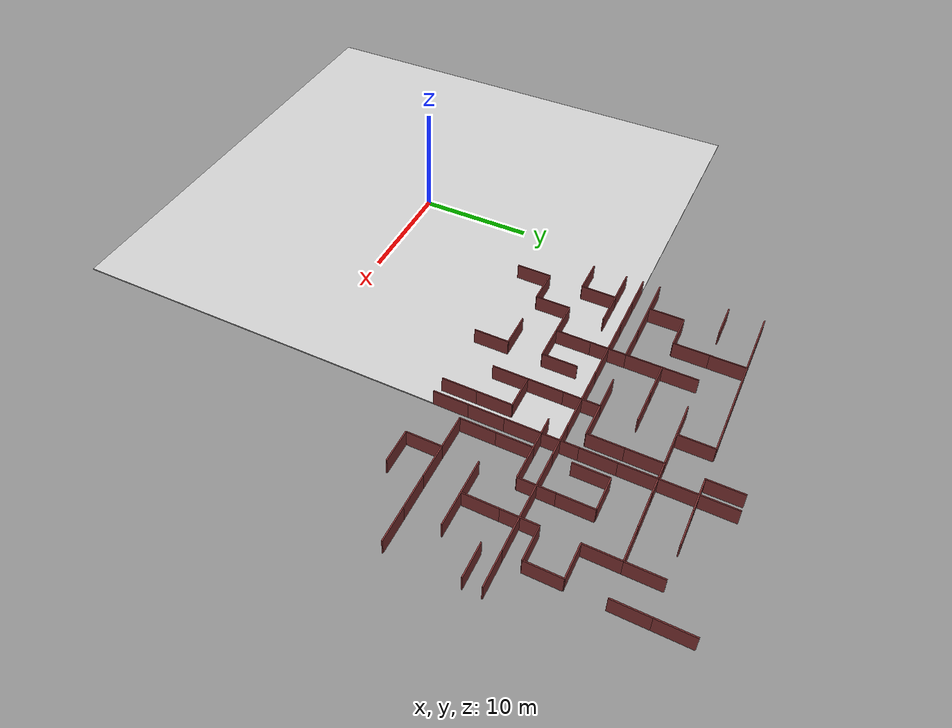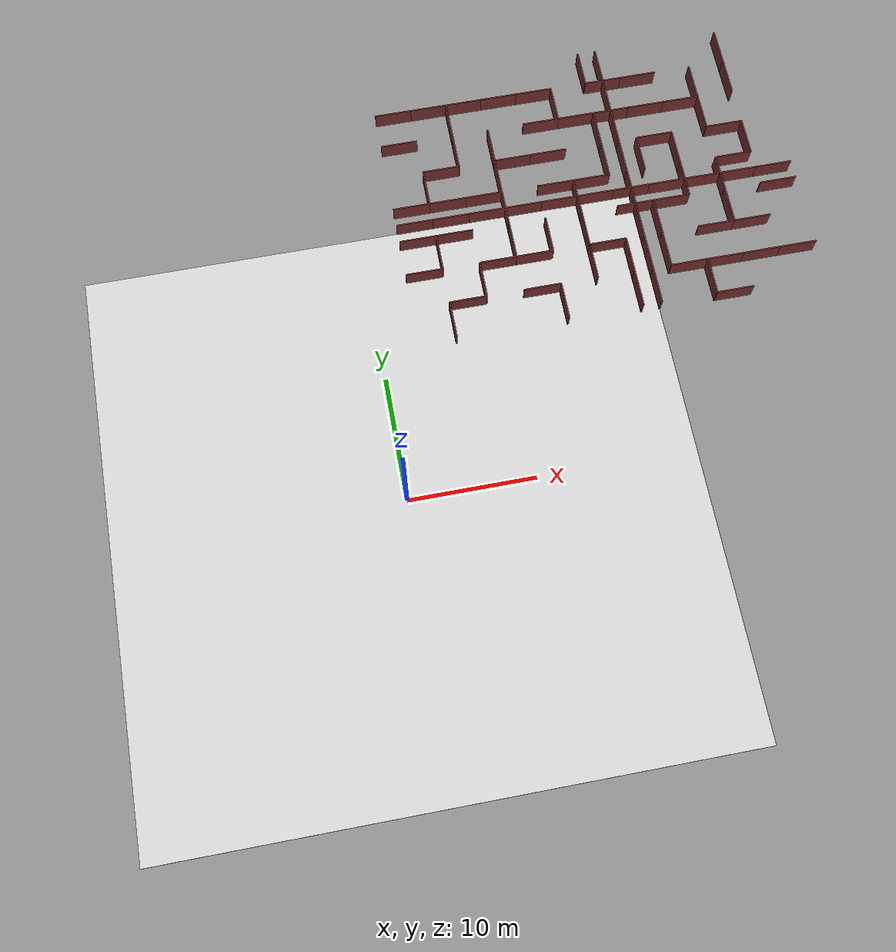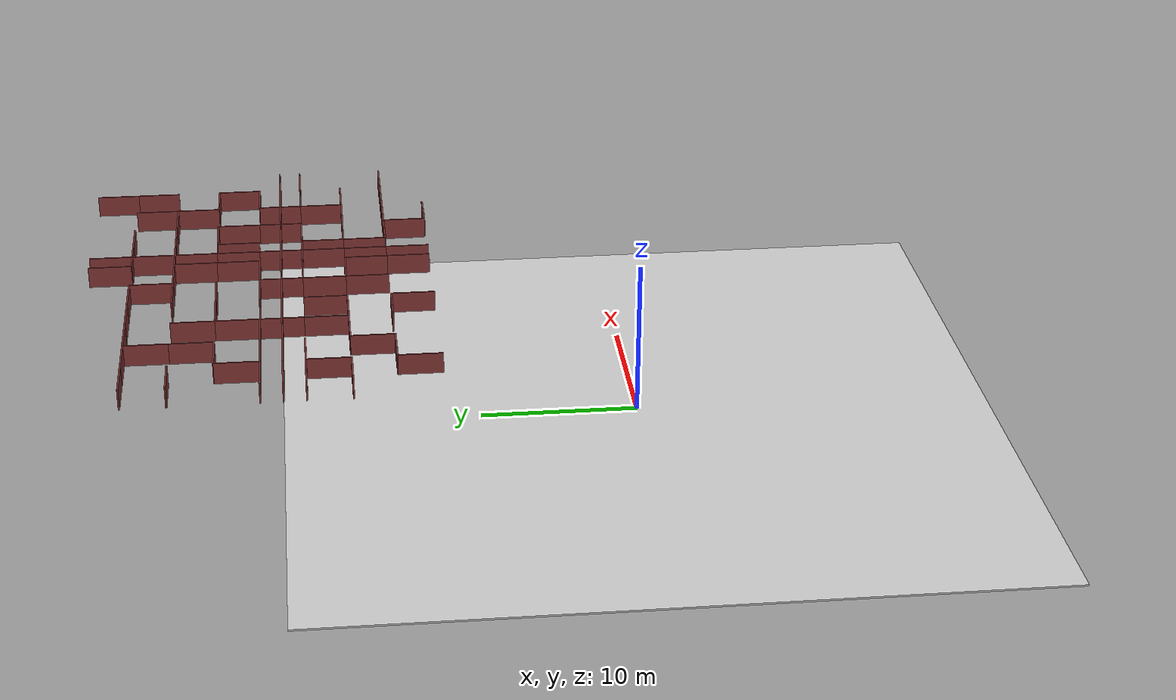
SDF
<sdf version="1.7">
 <world name="maze_world">
  <model name="ground">
   <static>true</static>
   <link name="ground_link">
    <collision name="collision"><geometry><box><size>45 45 0.1</size></box></geometry></collision>
    <visual name="visual">
     <geometry><box><size>45 45 0.1</size></box></geometry>
     <material><diffuse>0.8 0.8 0.8 1</diffuse></material>
    </visual>
   </link>
  </model>
  <model name="wall_w_117">
   <static>true</static>
   <pose>6.0 13.5 0.75 0 0 1.5708</pose>
   <link name="link">
    <collision name="collision"><geometry><box><size>3 0.1 1.5</size></box></geometry></collision>
    <visual name="visual">
     <geometry><box><size>3 0.1 1.5</size></box></geometry>
     <material><diffuse>0.5 0.2 0.2 1</diffuse></material>
    </visual>
   </link>
  </model>
  <model name="wall_w_120">
   <static>true</static>
   <pose>15.0 13.5 0.75 0 0 1.5708</pose>
   <link name="link">
    <collision name="collision"><geometry><box><size>3 0.1 1.5</size></box></geometry></collision>
    <visual name="visual">
     <geometry><box><size>3 0.1 1.5</size></box></geometry>
     <material><diffuse>0.5 0.2 0.2 1</diffuse></material>
    </visual>
   </link>
  </model>
  <model name="wall_w_122">
   <static>true</static>
   <pose>21.0 13.5 0.75 0 0 1.5708</pose>
   <link name="link">
    <collision name="collision"><geometry><box><size>3 0.1 1.5</size></box></geometry></collision>
    <visual name="visual">
     <geometry><box><size>3 0.1 1.5</size></box></geometry>
     <material><diffuse>0.5 0.2 0.2 1</diffuse></material>
    </visual>
   </link>
  </model>
  <model name="wall_n_123">
   <static>true</static>
   <pose>28.5 12.0 0.75 0 0 0</pose>
   <link name="link">
    <collision name="collision"><geometry><box><size>3 0.1 1.5</size></box></geometry></collision>
    <visual name="visual">
     <geometry><box><size>3 0.1 1.5</size></box></geometry>
     <material><diffuse>0.5 0.2 0.2 1</diffuse></material>
    </visual>
   </link>
  </model>
  <model name="wall_w_124">
   <static>true</static>
   <pose>27.0 13.5 0.75 0 0 1.5708</pose>
   <link name="link">
    <collision name="collision"><geometry><box><size>3 0.1 1.5</size></box></geometry></collision>
    <visual name="visual">
     <geometry><box><size>3 0.1 1.5</size></box></geometry>
     <material><diffuse>0.5 0.2 0.2 1</diffuse></material>
    </visual>
   </link>
  </model>
  <model name="wall_n_131">
   <static>true</static>
   <pose>7.5 15.0 0.75 0 0 0</pose>
   <link name="link">
    <collision name="collision"><geometry><box><size>3 0.1 1.5</size></box></geometry></collision>
    <visual name="visual">
     <geometry><box><size>3 0.1 1.5</size></box></geometry>
     <material><diffuse>0.5 0.2 0.2 1</diffuse></material>
    </visual>
   </link>
  </model>
  <model name="wall_w_132">
   <static>true</static>
   <pose>9.0 16.5 0.75 0 0 1.5708</pose>
   <link name="link">
    <collision name="collision"><geometry><box><size>3 0.1 1.5</size></box></geometry></collision>
    <visual name="visual">
     <geometry><box><size>3 0.1 1.5</size></box></geometry>
     <material><diffuse>0.5 0.2 0.2 1</diffuse></material>
    </visual>
   </link>
  </model>
  <model name="wall_n_133">
   <static>true</static>
   <pose>13.5 15.0 0.75 0 0 0</pose>
   <link name="link">
    <collision name="collision"><geometry><box><size>3 0.1 1.5</size></box></geometry></collision>
    <visual name="visual">
     <geometry><box><size>3 0.1 1.5</size></box></geometry>
     <material><diffuse>0.5 0.2 0.2 1</diffuse></material>
    </visual>
   </link>
  </model>
  <model name="wall_w_134">
   <static>true</static>
   <pose>18.0 16.5 0.75 0 0 1.5708</pose>
   <link name="link">
    <collision name="collision"><geometry><box><size>3 0.1 1.5</size></box></geometry></collision>
    <visual name="visual">
     <geometry><box><size>3 0.1 1.5</size></box></geometry>
     <material><diffuse>0.5 0.2 0.2 1</diffuse></material>
    </visual>
   </link>
  </model>
  <model name="wall_w_135">
   <static>true</static>
   <pose>21.0 16.5 0.75 0 0 1.5708</pose>
   <link name="link">
    <collision name="collision"><geometry><box><size>3 0.1 1.5</size></box></geometry></collision>
    <visual name="visual">
     <geometry><box><size>3 0.1 1.5</size></box></geometry>
     <material><diffuse>0.5 0.2 0.2 1</diffuse></material>
    </visual>
   </link>
  </model>
  <model name="wall_n_136">
   <static>true</static>
   <pose>25.5 15.0 0.75 0 0 0</pose>
   <link name="link">
    <collision name="collision"><geometry><box><size>3 0.1 1.5</size></box></geometry></collision>
    <visual name="visual">
     <geometry><box><size>3 0.1 1.5</size></box></geometry>
     <material><diffuse>0.5 0.2 0.2 1</diffuse></material>
    </visual>
   </link>
  </model>
  <model name="wall_w_137">
   <static>true</static>
   <pose>24.0 16.5 0.75 0 0 1.5708</pose>
   <link name="link">
    <collision name="collision"><geometry><box><size>3 0.1 1.5</size></box></geometry></collision>
    <visual name="visual">
     <geometry><box><size>3 0.1 1.5</size></box></geometry>
     <material><diffuse>0.5 0.2 0.2 1</diffuse></material>
    </visual>
   </link>
  </model>
  <model name="wall_n_138">
   <static>true</static>
   <pose>28.5 15.0 0.75 0 0 0</pose>
   <link name="link">
    <collision name="collision"><geometry><box><size>3 0.1 1.5</size></box></geometry></collision>
    <visual name="visual">
     <geometry><box><size>3 0.1 1.5</size></box></geometry>
     <material><diffuse>0.5 0.2 0.2 1</diffuse></material>
    </visual>
   </link>
  </model>
  <model name="wall_n_139">
   <static>true</static>
   <pose>31.5 15.0 0.75 0 0 0</pose>
   <link name="link">
    <collision name="collision"><geometry><box><size>3 0.1 1.5</size></box></geometry></collision>
    <visual name="visual">
     <geometry><box><size>3 0.1 1.5</size></box></geometry>
     <material><diffuse>0.5 0.2 0.2 1</diffuse></material>
    </visual>
   </link>
  </model>
  <model name="wall_n_140">
   <static>true</static>
   <pose>34.5 15.0 0.75 0 0 0</pose>
   <link name="link">
    <collision name="collision"><geometry><box><size>3 0.1 1.5</size></box></geometry></collision>
    <visual name="visual">
     <geometry><box><size>3 0.1 1.5</size></box></geometry>
     <material><diffuse>0.5 0.2 0.2 1</diffuse></material>
    </visual>
   </link>
  </model>
  <model name="wall_n_144">
   <static>true</static>
   <pose>4.5 18.0 0.75 0 0 0</pose>
   <link name="link">
    <collision name="collision"><geometry><box><size>3 0.1 1.5</size></box></geometry></collision>
    <visual name="visual">
     <geometry><box><size>3 0.1 1.5</size></box></geometry>
     <material><diffuse>0.5 0.2 0.2 1</diffuse></material>
    </visual>
   </link>
  </model>
  <model name="wall_w_145">
   <static>true</static>
   <pose>6.0 19.5 0.75 0 0 1.5708</pose>
   <link name="link">
    <collision name="collision"><geometry><box><size>3 0.1 1.5</size></box></geometry></collision>
    <visual name="visual">
     <geometry><box><size>3 0.1 1.5</size></box></geometry>
     <material><diffuse>0.5 0.2 0.2 1</diffuse></material>
    </visual>
   </link>
  </model>
  <model name="wall_n_146">
   <static>true</static>
   <pose>10.5 18.0 0.75 0 0 0</pose>
   <link name="link">
    <collision name="collision"><geometry><box><size>3 0.1 1.5</size></box></geometry></collision>
    <visual name="visual">
     <geometry><box><size>3 0.1 1.5</size></box></geometry>
     <material><diffuse>0.5 0.2 0.2 1</diffuse></material>
    </visual>
   </link>
  </model>
  <model name="wall_n_147">
   <static>true</static>
   <pose>13.5 18.0 0.75 0 0 0</pose>
   <link name="link">
    <collision name="collision"><geometry><box><size>3 0.1 1.5</size></box></geometry></collision>
    <visual name="visual">
     <geometry><box><size>3 0.1 1.5</size></box></geometry>
     <material><diffuse>0.5 0.2 0.2 1</diffuse></material>
    </visual>
   </link>
  </model>
  <model name="wall_w_148">
   <static>true</static>
   <pose>12.0 19.5 0.75 0 0 1.5708</pose>
   <link name="link">
    <collision name="collision"><geometry><box><size>3 0.1 1.5</size></box></geometry></collision>
    <visual name="visual">
     <geometry><box><size>3 0.1 1.5</size></box></geometry>
     <material><diffuse>0.5 0.2 0.2 1</diffuse></material>
    </visual>
   </link>
  </model>
  <model name="wall_w_149">
   <static>true</static>
   <pose>15.0 19.5 0.75 0 0 1.5708</pose>
   <link name="link">
    <collision name="collision"><geometry><box><size>3 0.1 1.5</size></box></geometry></collision>
    <visual name="visual">
     <geometry><box><size>3 0.1 1.5</size></box></geometry>
     <material><diffuse>0.5 0.2 0.2 1</diffuse></material>
    </visual>
   </link>
  </model>
  <model name="wall_n_150">
   <static>true</static>
   <pose>19.5 18.0 0.75 0 0 0</pose>
   <link name="link">
    <collision name="collision"><geometry><box><size>3 0.1 1.5</size></box></geometry></collision>
    <visual name="visual">
     <geometry><box><size>3 0.1 1.5</size></box></geometry>
     <material><diffuse>0.5 0.2 0.2 1</diffuse></material>
    </visual>
   </link>
  </model>
  <model name="wall_w_151">
   <static>true</static>
   <pose>18.0 19.5 0.75 0 0 1.5708</pose>
   <link name="link">
    <collision name="collision"><geometry><box><size>3 0.1 1.5</size></box></geometry></collision>
    <visual name="visual">
     <geometry><box><size>3 0.1 1.5</size></box></geometry>
     <material><diffuse>0.5 0.2 0.2 1</diffuse></material>
    </visual>
   </link>
  </model>
  <model name="wall_w_152">
   <static>true</static>
   <pose>24.0 19.5 0.75 0 0 1.5708</pose>
   <link name="link">
    <collision name="collision"><geometry><box><size>3 0.1 1.5</size></box></geometry></collision>
    <visual name="visual">
     <geometry><box><size>3 0.1 1.5</size></box></geometry>
     <material><diffuse>0.5 0.2 0.2 1</diffuse></material>
    </visual>
   </link>
  </model>
  <model name="wall_n_153">
   <static>true</static>
   <pose>28.5 18.0 0.75 0 0 0</pose>
   <link name="link">
    <collision name="collision"><geometry><box><size>3 0.1 1.5</size></box></geometry></collision>
    <visual name="visual">
     <geometry><box><size>3 0.1 1.5</size></box></geometry>
     <material><diffuse>0.5 0.2 0.2 1</diffuse></material>
    </visual>
   </link>
  </model>
  <model name="wall_n_154">
   <static>true</static>
   <pose>31.5 18.0 0.75 0 0 0</pose>
   <link name="link">
    <collision name="collision"><geometry><box><size>3 0.1 1.5</size></box></geometry></collision>
    <visual name="visual">
     <geometry><box><size>3 0.1 1.5</size></box></geometry>
     <material><diffuse>0.5 0.2 0.2 1</diffuse></material>
    </visual>
   </link>
  </model>
  <model name="wall_w_155">
   <static>true</static>
   <pose>30.0 19.5 0.75 0 0 1.5708</pose>
   <link name="link">
    <collision name="collision"><geometry><box><size>3 0.1 1.5</size></box></geometry></collision>
    <visual name="visual">
     <geometry><box><size>3 0.1 1.5</size></box></geometry>
     <material><diffuse>0.5 0.2 0.2 1</diffuse></material>
    </visual>
   </link>
  </model>
  <model name="wall_n_160">
   <static>true</static>
   <pose>4.5 21.0 0.75 0 0 0</pose>
   <link name="link">
    <collision name="collision"><geometry><box><size>3 0.1 1.5</size></box></geometry></collision>
    <visual name="visual">
     <geometry><box><size>3 0.1 1.5</size></box></geometry>
     <material><diffuse>0.5 0.2 0.2 1</diffuse></material>
    </visual>
   </link>
  </model>
  <model name="wall_n_161">
   <static>true</static>
   <pose>7.5 21.0 0.75 0 0 0</pose>
   <link name="link">
    <collision name="collision"><geometry><box><size>3 0.1 1.5</size></box></geometry></collision>
    <visual name="visual">
     <geometry><box><size>3 0.1 1.5</size></box></geometry>
     <material><diffuse>0.5 0.2 0.2 1</diffuse></material>
    </visual>
   </link>
  </model>
  <model name="wall_w_162">
   <static>true</static>
   <pose>12.0 22.5 0.75 0 0 1.5708</pose>
   <link name="link">
    <collision name="collision"><geometry><box><size>3 0.1 1.5</size></box></geometry></collision>
    <visual name="visual">
     <geometry><box><size>3 0.1 1.5</size></box></geometry>
     <material><diffuse>0.5 0.2 0.2 1</diffuse></material>
    </visual>
   </link>
  </model>
  <model name="wall_w_163">
   <static>true</static>
   <pose>18.0 22.5 0.75 0 0 1.5708</pose>
   <link name="link">
    <collision name="collision"><geometry><box><size>3 0.1 1.5</size></box></geometry></collision>
    <visual name="visual">
     <geometry><box><size>3 0.1 1.5</size></box></geometry>
     <material><diffuse>0.5 0.2 0.2 1</diffuse></material>
    </visual>
   </link>
  </model>
  <model name="wall_n_164">
   <static>true</static>
   <pose>22.5 21.0 0.75 0 0 0</pose>
   <link name="link">
    <collision name="collision"><geometry><box><size>3 0.1 1.5</size></box></geometry></collision>
    <visual name="visual">
     <geometry><box><size>3 0.1 1.5</size></box></geometry>
     <material><diffuse>0.5 0.2 0.2 1</diffuse></material>
    </visual>
   </link>
  </model>
  <model name="wall_n_165">
   <static>true</static>
   <pose>25.5 21.0 0.75 0 0 0</pose>
   <link name="link">
    <collision name="collision"><geometry><box><size>3 0.1 1.5</size></box></geometry></collision>
    <visual name="visual">
     <geometry><box><size>3 0.1 1.5</size></box></geometry>
     <material><diffuse>0.5 0.2 0.2 1</diffuse></material>
    </visual>
   </link>
  </model>
  <model name="wall_w_166">
   <static>true</static>
   <pose>27.0 22.5 0.75 0 0 1.5708</pose>
   <link name="link">
    <collision name="collision"><geometry><box><size>3 0.1 1.5</size></box></geometry></collision>
    <visual name="visual">
     <geometry><box><size>3 0.1 1.5</size></box></geometry>
     <material><diffuse>0.5 0.2 0.2 1</diffuse></material>
    </visual>
   </link>
  </model>
  <model name="wall_w_167">
   <static>true</static>
   <pose>30.0 22.5 0.75 0 0 1.5708</pose>
   <link name="link">
    <collision name="collision"><geometry><box><size>3 0.1 1.5</size></box></geometry></collision>
    <visual name="visual">
     <geometry><box><size>3 0.1 1.5</size></box></geometry>
     <material><diffuse>0.5 0.2 0.2 1</diffuse></material>
    </visual>
   </link>
  </model>
  <model name="wall_n_168">
   <static>true</static>
   <pose>34.5 21.0 0.75 0 0 0</pose>
   <link name="link">
    <collision name="collision"><geometry><box><size>3 0.1 1.5</size></box></geometry></collision>
    <visual name="visual">
     <geometry><box><size>3 0.1 1.5</size></box></geometry>
     <material><diffuse>0.5 0.2 0.2 1</diffuse></material>
    </visual>
   </link>
  </model>
  <model name="wall_n_175">
   <static>true</static>
   <pose>4.5 24.0 0.75 0 0 0</pose>
   <link name="link">
    <collision name="collision"><geometry><box><size>3 0.1 1.5</size></box></geometry></collision>
    <visual name="visual">
     <geometry><box><size>3 0.1 1.5</size></box></geometry>
     <material><diffuse>0.5 0.2 0.2 1</diffuse></material>
    </visual>
   </link>
  </model>
  <model name="wall_n_176">
   <static>true</static>
   <pose>7.5 24.0 0.75 0 0 0</pose>
   <link name="link">
    <collision name="collision"><geometry><box><size>3 0.1 1.5</size></box></geometry></collision>
    <visual name="visual">
     <geometry><box><size>3 0.1 1.5</size></box></geometry>
     <material><diffuse>0.5 0.2 0.2 1</diffuse></material>
    </visual>
   </link>
  </model>
  <model name="wall_w_177">
   <static>true</static>
   <pose>6.0 25.5 0.75 0 0 1.5708</pose>
   <link name="link">
    <collision name="collision"><geometry><box><size>3 0.1 1.5</size></box></geometry></collision>
    <visual name="visual">
     <geometry><box><size>3 0.1 1.5</size></box></geometry>
     <material><diffuse>0.5 0.2 0.2 1</diffuse></material>
    </visual>
   </link>
  </model>
  <model name="wall_n_178">
   <static>true</static>
   <pose>10.5 24.0 0.75 0 0 0</pose>
   <link name="link">
    <collision name="collision"><geometry><box><size>3 0.1 1.5</size></box></geometry></collision>
    <visual name="visual">
     <geometry><box><size>3 0.1 1.5</size></box></geometry>
     <material><diffuse>0.5 0.2 0.2 1</diffuse></material>
    </visual>
   </link>
  </model>
  <model name="wall_w_179">
   <static>true</static>
   <pose>12.0 25.5 0.75 0 0 1.5708</pose>
   <link name="link">
    <collision name="collision"><geometry><box><size>3 0.1 1.5</size></box></geometry></collision>
    <visual name="visual">
     <geometry><box><size>3 0.1 1.5</size></box></geometry>
     <material><diffuse>0.5 0.2 0.2 1</diffuse></material>
    </visual>
   </link>
  </model>
  <model name="wall_n_180">
   <static>true</static>
   <pose>16.5 24.0 0.75 0 0 0</pose>
   <link name="link">
    <collision name="collision"><geometry><box><size>3 0.1 1.5</size></box></geometry></collision>
    <visual name="visual">
     <geometry><box><size>3 0.1 1.5</size></box></geometry>
     <material><diffuse>0.5 0.2 0.2 1</diffuse></material>
    </visual>
   </link>
  </model>
  <model name="wall_n_181">
   <static>true</static>
   <pose>19.5 24.0 0.75 0 0 0</pose>
   <link name="link">
    <collision name="collision"><geometry><box><size>3 0.1 1.5</size></box></geometry></collision>
    <visual name="visual">
     <geometry><box><size>3 0.1 1.5</size></box></geometry>
     <material><diffuse>0.5 0.2 0.2 1</diffuse></material>
    </visual>
   </link>
  </model>
  <model name="wall_w_182">
   <static>true</static>
   <pose>21.0 25.5 0.75 0 0 1.5708</pose>
   <link name="link">
    <collision name="collision"><geometry><box><size>3 0.1 1.5</size></box></geometry></collision>
    <visual name="visual">
     <geometry><box><size>3 0.1 1.5</size></box></geometry>
     <material><diffuse>0.5 0.2 0.2 1</diffuse></material>
    </visual>
   </link>
  </model>
  <model name="wall_w_183">
   <static>true</static>
   <pose>24.0 25.5 0.75 0 0 1.5708</pose>
   <link name="link">
    <collision name="collision"><geometry><box><size>3 0.1 1.5</size></box></geometry></collision>
    <visual name="visual">
     <geometry><box><size>3 0.1 1.5</size></box></geometry>
     <material><diffuse>0.5 0.2 0.2 1</diffuse></material>
    </visual>
   </link>
  </model>
  <model name="wall_w_184">
   <static>true</static>
   <pose>27.0 25.5 0.75 0 0 1.5708</pose>
   <link name="link">
    <collision name="collision"><geometry><box><size>3 0.1 1.5</size></box></geometry></collision>
    <visual name="visual">
     <geometry><box><size>3 0.1 1.5</size></box></geometry>
     <material><diffuse>0.5 0.2 0.2 1</diffuse></material>
    </visual>
   </link>
  </model>
  <model name="wall_n_185">
   <static>true</static>
   <pose>31.5 24.0 0.75 0 0 0</pose>
   <link name="link">
    <collision name="collision"><geometry><box><size>3 0.1 1.5</size></box></geometry></collision>
    <visual name="visual">
     <geometry><box><size>3 0.1 1.5</size></box></geometry>
     <material><diffuse>0.5 0.2 0.2 1</diffuse></material>
    </visual>
   </link>
  </model>
  <model name="wall_w_186">
   <static>true</static>
   <pose>33.0 25.5 0.75 0 0 1.5708</pose>
   <link name="link">
    <collision name="collision"><geometry><box><size>3 0.1 1.5</size></box></geometry></collision>
    <visual name="visual">
     <geometry><box><size>3 0.1 1.5</size></box></geometry>
     <material><diffuse>0.5 0.2 0.2 1</diffuse></material>
    </visual>
   </link>
  </model>
  <model name="wall_n_190">
   <static>true</static>
   <pose>7.5 27.0 0.75 0 0 0</pose>
   <link name="link">
    <collision name="collision"><geometry><box><size>3 0.1 1.5</size></box></geometry></collision>
    <visual name="visual">
     <geometry><box><size>3 0.1 1.5</size></box></geometry>
     <material><diffuse>0.5 0.2 0.2 1</diffuse></material>
    </visual>
   </link>
  </model>
  <model name="wall_w_191">
   <static>true</static>
   <pose>9.0 28.5 0.75 0 0 1.5708</pose>
   <link name="link">
    <collision name="collision"><geometry><box><size>3 0.1 1.5</size></box></geometry></collision>
    <visual name="visual">
     <geometry><box><size>3 0.1 1.5</size></box></geometry>
     <material><diffuse>0.5 0.2 0.2 1</diffuse></material>
    </visual>
   </link>
  </model>
  <model name="wall_n_192">
   <static>true</static>
   <pose>13.5 27.0 0.75 0 0 0</pose>
   <link name="link">
    <collision name="collision"><geometry><box><size>3 0.1 1.5</size></box></geometry></collision>
    <visual name="visual">
     <geometry><box><size>3 0.1 1.5</size></box></geometry>
     <material><diffuse>0.5 0.2 0.2 1</diffuse></material>
    </visual>
   </link>
  </model>
  <model name="wall_w_193">
   <static>true</static>
   <pose>12.0 28.5 0.75 0 0 1.5708</pose>
   <link name="link">
    <collision name="collision"><geometry><box><size>3 0.1 1.5</size></box></geometry></collision>
    <visual name="visual">
     <geometry><box><size>3 0.1 1.5</size></box></geometry>
     <material><diffuse>0.5 0.2 0.2 1</diffuse></material>
    </visual>
   </link>
  </model>
  <model name="wall_n_194">
   <static>true</static>
   <pose>16.5 27.0 0.75 0 0 0</pose>
   <link name="link">
    <collision name="collision"><geometry><box><size>3 0.1 1.5</size></box></geometry></collision>
    <visual name="visual">
     <geometry><box><size>3 0.1 1.5</size></box></geometry>
     <material><diffuse>0.5 0.2 0.2 1</diffuse></material>
    </visual>
   </link>
  </model>
  <model name="wall_w_195">
   <static>true</static>
   <pose>21.0 28.5 0.75 0 0 1.5708</pose>
   <link name="link">
    <collision name="collision"><geometry><box><size>3 0.1 1.5</size></box></geometry></collision>
    <visual name="visual">
     <geometry><box><size>3 0.1 1.5</size></box></geometry>
     <material><diffuse>0.5 0.2 0.2 1</diffuse></material>
    </visual>
   </link>
  </model>
  <model name="wall_n_196">
   <static>true</static>
   <pose>25.5 27.0 0.75 0 0 0</pose>
   <link name="link">
    <collision name="collision"><geometry><box><size>3 0.1 1.5</size></box></geometry></collision>
    <visual name="visual">
     <geometry><box><size>3 0.1 1.5</size></box></geometry>
     <material><diffuse>0.5 0.2 0.2 1</diffuse></material>
    </visual>
   </link>
  </model>
  <model name="wall_n_197">
   <static>true</static>
   <pose>31.5 27.0 0.75 0 0 0</pose>
   <link name="link">
    <collision name="collision"><geometry><box><size>3 0.1 1.5</size></box></geometry></collision>
    <visual name="visual">
     <geometry><box><size>3 0.1 1.5</size></box></geometry>
     <material><diffuse>0.5 0.2 0.2 1</diffuse></material>
    </visual>
   </link>
  </model>
  <model name="wall_w_198">
   <static>true</static>
   <pose>30.0 28.5 0.75 0 0 1.5708</pose>
   <link name="link">
    <collision name="collision"><geometry><box><size>3 0.1 1.5</size></box></geometry></collision>
    <visual name="visual">
     <geometry><box><size>3 0.1 1.5</size></box></geometry>
     <material><diffuse>0.5 0.2 0.2 1</diffuse></material>
    </visual>
   </link>
  </model>
  <model name="wall_n_205">
   <static>true</static>
   <pose>4.5 30.0 0.75 0 0 0</pose>
   <link name="link">
    <collision name="collision"><geometry><box><size>3 0.1 1.5</size></box></geometry></collision>
    <visual name="visual">
     <geometry><box><size>3 0.1 1.5</size></box></geometry>
     <material><diffuse>0.5 0.2 0.2 1</diffuse></material>
    </visual>
   </link>
  </model>
  <model name="wall_w_206">
   <static>true</static>
   <pose>9.0 31.5 0.75 0 0 1.5708</pose>
   <link name="link">
    <collision name="collision"><geometry><box><size>3 0.1 1.5</size></box></geometry></collision>
    <visual name="visual">
     <geometry><box><size>3 0.1 1.5</size></box></geometry>
     <material><diffuse>0.5 0.2 0.2 1</diffuse></material>
    </visual>
   </link>
  </model>
  <model name="wall_n_207">
   <static>true</static>
   <pose>16.5 30.0 0.75 0 0 0</pose>
   <link name="link">
    <collision name="collision"><geometry><box><size>3 0.1 1.5</size></box></geometry></collision>
    <visual name="visual">
     <geometry><box><size>3 0.1 1.5</size></box></geometry>
     <material><diffuse>0.5 0.2 0.2 1</diffuse></material>
    </visual>
   </link>
  </model>
  <model name="wall_n_208">
   <static>true</static>
   <pose>19.5 30.0 0.75 0 0 0</pose>
   <link name="link">
    <collision name="collision"><geometry><box><size>3 0.1 1.5</size></box></geometry></collision>
    <visual name="visual">
     <geometry><box><size>3 0.1 1.5</size></box></geometry>
     <material><diffuse>0.5 0.2 0.2 1</diffuse></material>
    </visual>
   </link>
  </model>
  <model name="wall_w_209">
   <static>true</static>
   <pose>18.0 31.5 0.75 0 0 1.5708</pose>
   <link name="link">
    <collision name="collision"><geometry><box><size>3 0.1 1.5</size></box></geometry></collision>
    <visual name="visual">
     <geometry><box><size>3 0.1 1.5</size></box></geometry>
     <material><diffuse>0.5 0.2 0.2 1</diffuse></material>
    </visual>
   </link>
  </model>
  <model name="wall_n_210">
   <static>true</static>
   <pose>22.5 30.0 0.75 0 0 0</pose>
   <link name="link">
    <collision name="collision"><geometry><box><size>3 0.1 1.5</size></box></geometry></collision>
    <visual name="visual">
     <geometry><box><size>3 0.1 1.5</size></box></geometry>
     <material><diffuse>0.5 0.2 0.2 1</diffuse></material>
    </visual>
   </link>
  </model>
  <model name="wall_n_211">
   <static>true</static>
   <pose>25.5 30.0 0.75 0 0 0</pose>
   <link name="link">
    <collision name="collision"><geometry><box><size>3 0.1 1.5</size></box></geometry></collision>
    <visual name="visual">
     <geometry><box><size>3 0.1 1.5</size></box></geometry>
     <material><diffuse>0.5 0.2 0.2 1</diffuse></material>
    </visual>
   </link>
  </model>
  <model name="wall_n_212">
   <static>true</static>
   <pose>28.5 30.0 0.75 0 0 0</pose>
   <link name="link">
    <collision name="collision"><geometry><box><size>3 0.1 1.5</size></box></geometry></collision>
    <visual name="visual">
     <geometry><box><size>3 0.1 1.5</size></box></geometry>
     <material><diffuse>0.5 0.2 0.2 1</diffuse></material>
    </visual>
   </link>
  </model>
  <model name="wall_w_213">
   <static>true</static>
   <pose>30.0 31.5 0.75 0 0 1.5708</pose>
   <link name="link">
    <collision name="collision"><geometry><box><size>3 0.1 1.5</size></box></geometry></collision>
    <visual name="visual">
     <geometry><box><size>3 0.1 1.5</size></box></geometry>
     <material><diffuse>0.5 0.2 0.2 1</diffuse></material>
    </visual>
   </link>
  </model>
  <model name="wall_w_214">
   <static>true</static>
   <pose>33.0 31.5 0.75 0 0 1.5708</pose>
   <link name="link">
    <collision name="collision"><geometry><box><size>3 0.1 1.5</size></box></geometry></collision>
    <visual name="visual">
     <geometry><box><size>3 0.1 1.5</size></box></geometry>
     <material><diffuse>0.5 0.2 0.2 1</diffuse></material>
    </visual>
   </link>
  </model>
  <model name="wall_n_218">
   <static>true</static>
   <pose>4.5 33.0 0.75 0 0 0</pose>
   <link name="link">
    <collision name="collision"><geometry><box><size>3 0.1 1.5</size></box></geometry></collision>
    <visual name="visual">
     <geometry><box><size>3 0.1 1.5</size></box></geometry>
     <material><diffuse>0.5 0.2 0.2 1</diffuse></material>
    </visual>
   </link>
  </model>
  <model name="wall_n_219">
   <static>true</static>
   <pose>7.5 33.0 0.75 0 0 0</pose>
   <link name="link">
    <collision name="collision"><geometry><box><size>3 0.1 1.5</size></box></geometry></collision>
    <visual name="visual">
     <geometry><box><size>3 0.1 1.5</size></box></geometry>
     <material><diffuse>0.5 0.2 0.2 1</diffuse></material>
    </visual>
   </link>
  </model>
  <model name="wall_n_220">
   <static>true</static>
   <pose>10.5 33.0 0.75 0 0 0</pose>
   <link name="link">
    <collision name="collision"><geometry><box><size>3 0.1 1.5</size></box></geometry></collision>
    <visual name="visual">
     <geometry><box><size>3 0.1 1.5</size></box></geometry>
     <material><diffuse>0.5 0.2 0.2 1</diffuse></material>
    </visual>
   </link>
  </model>
  <model name="wall_n_221">
   <static>true</static>
   <pose>13.5 33.0 0.75 0 0 0</pose>
   <link name="link">
    <collision name="collision"><geometry><box><size>3 0.1 1.5</size></box></geometry></collision>
    <visual name="visual">
     <geometry><box><size>3 0.1 1.5</size></box></geometry>
     <material><diffuse>0.5 0.2 0.2 1</diffuse></material>
    </visual>
   </link>
  </model>
  <model name="wall_n_222">
   <static>true</static>
   <pose>16.5 33.0 0.75 0 0 0</pose>
   <link name="link">
    <collision name="collision"><geometry><box><size>3 0.1 1.5</size></box></geometry></collision>
    <visual name="visual">
     <geometry><box><size>3 0.1 1.5</size></box></geometry>
     <material><diffuse>0.5 0.2 0.2 1</diffuse></material>
    </visual>
   </link>
  </model>
  <model name="wall_n_223">
   <static>true</static>
   <pose>22.5 33.0 0.75 0 0 0</pose>
   <link name="link">
    <collision name="collision"><geometry><box><size>3 0.1 1.5</size></box></geometry></collision>
    <visual name="visual">
     <geometry><box><size>3 0.1 1.5</size></box></geometry>
     <material><diffuse>0.5 0.2 0.2 1</diffuse></material>
    </visual>
   </link>
  </model>
  <model name="wall_w_224">
   <static>true</static>
   <pose>21.0 34.5 0.75 0 0 1.5708</pose>
   <link name="link">
    <collision name="collision"><geometry><box><size>3 0.1 1.5</size></box></geometry></collision>
    <visual name="visual">
     <geometry><box><size>3 0.1 1.5</size></box></geometry>
     <material><diffuse>0.5 0.2 0.2 1</diffuse></material>
    </visual>
   </link>
  </model>
  <model name="wall_n_225">
   <static>true</static>
   <pose>25.5 33.0 0.75 0 0 0</pose>
   <link name="link">
    <collision name="collision"><geometry><box><size>3 0.1 1.5</size></box></geometry></collision>
    <visual name="visual">
     <geometry><box><size>3 0.1 1.5</size></box></geometry>
     <material><diffuse>0.5 0.2 0.2 1</diffuse></material>
    </visual>
   </link>
  </model>
  <model name="wall_w_226">
   <static>true</static>
   <pose>33.0 34.5 0.75 0 0 1.5708</pose>
   <link name="link">
    <collision name="collision"><geometry><box><size>3 0.1 1.5</size></box></geometry></collision>
    <visual name="visual">
     <geometry><box><size>3 0.1 1.5</size></box></geometry>
     <material><diffuse>0.5 0.2 0.2 1</diffuse></material>
    </visual>
   </link>
  </model>
  <model name="wall_top_4">
   <static>true</static>
   <pose>4.5 22.5 0.75 0 0 0</pose>
   <link name="link">
    <collision name="collision"><geometry><box><size>3 0.1 1.5</size></box></geometry></collision>
    <visual name="visual">
     <geometry><box><size>3 0.1 1.5</size></box></geometry>
     <material><diffuse>0.5 0.2 0.2 1</diffuse></material>
    </visual>
   </link>
  </model>
  <model name="wall_top_5">
   <static>true</static>
   <pose>7.5 22.5 0.75 0 0 0</pose>
   <link name="link">
    <collision name="collision"><geometry><box><size>3 0.1 1.5</size></box></geometry></collision>
    <visual name="visual">
     <geometry><box><size>3 0.1 1.5</size></box></geometry>
     <material><diffuse>0.5 0.2 0.2 1</diffuse></material>
    </visual>
   </link>
  </model>
  <model name="wall_top_6">
   <static>true</static>
   <pose>10.5 22.5 0.75 0 0 0</pose>
   <link name="link">
    <collision name="collision"><geometry><box><size>3 0.1 1.5</size></box></geometry></collision>
    <visual name="visual">
     <geometry><box><size>3 0.1 1.5</size></box></geometry>
     <material><diffuse>0.5 0.2 0.2 1</diffuse></material>
    </visual>
   </link>
  </model>
  <model name="wall_top_7">
   <static>true</static>
   <pose>13.5 22.5 0.75 0 0 0</pose>
   <link name="link">
    <collision name="collision"><geometry><box><size>3 0.1 1.5</size></box></geometry></collision>
    <visual name="visual">
     <geometry><box><size>3 0.1 1.5</size></box></geometry>
     <material><diffuse>0.5 0.2 0.2 1</diffuse></material>
    </visual>
   </link>
  </model>
  <model name="wall_top_8">
   <static>true</static>
   <pose>16.5 22.5 0.75 0 0 0</pose>
   <link name="link">
    <collision name="collision"><geometry><box><size>3 0.1 1.5</size></box></geometry></collision>
    <visual name="visual">
     <geometry><box><size>3 0.1 1.5</size></box></geometry>
     <material><diffuse>0.5 0.2 0.2 1</diffuse></material>
    </visual>
   </link>
  </model>
  <model name="wall_top_9">
   <static>true</static>
   <pose>19.5 22.5 0.75 0 0 0</pose>
   <link name="link">
    <collision name="collision"><geometry><box><size>3 0.1 1.5</size></box></geometry></collision>
    <visual name="visual">
     <geometry><box><size>3 0.1 1.5</size></box></geometry>
     <material><diffuse>0.5 0.2 0.2 1</diffuse></material>
    </visual>
   </link>
  </model>
  <model name="wall_top_10">
   <static>true</static>
   <pose>22.5 22.5 0.75 0 0 0</pose>
   <link name="link">
    <collision name="collision"><geometry><box><size>3 0.1 1.5</size></box></geometry></collision>
    <visual name="visual">
     <geometry><box><size>3 0.1 1.5</size></box></geometry>
     <material><diffuse>0.5 0.2 0.2 1</diffuse></material>
    </visual>
   </link>
  </model>
  <model name="wall_top_11">
   <static>true</static>
   <pose>25.5 22.5 0.75 0 0 0</pose>
   <link name="link">
    <collision name="collision"><geometry><box><size>3 0.1 1.5</size></box></geometry></collision>
    <visual name="visual">
     <geometry><box><size>3 0.1 1.5</size></box></geometry>
     <material><diffuse>0.5 0.2 0.2 1</diffuse></material>
    </visual>
   </link>
  </model>
  <model name="wall_top_12">
   <static>true</static>
   <pose>28.5 22.5 0.75 0 0 0</pose>
   <link name="link">
    <collision name="collision"><geometry><box><size>3 0.1 1.5</size></box></geometry></collision>
    <visual name="visual">
     <geometry><box><size>3 0.1 1.5</size></box></geometry>
     <material><diffuse>0.5 0.2 0.2 1</diffuse></material>
    </visual>
   </link>
  </model>
  <model name="wall_top_13">
   <static>true</static>
   <pose>31.5 22.5 0.75 0 0 0</pose>
   <link name="link">
    <collision name="collision"><geometry><box><size>3 0.1 1.5</size></box></geometry></collision>
    <visual name="visual">
     <geometry><box><size>3 0.1 1.5</size></box></geometry>
     <material><diffuse>0.5 0.2 0.2 1</diffuse></material>
    </visual>
   </link>
  </model>
  <model name="wall_top_14">
   <static>true</static>
   <pose>34.5 22.5 0.75 0 0 0</pose>
   <link name="link">
    <collision name="collision"><geometry><box><size>3 0.1 1.5</size></box></geometry></collision>
    <visual name="visual">
     <geometry><box><size>3 0.1 1.5</size></box></geometry>
     <material><diffuse>0.5 0.2 0.2 1</diffuse></material>
    </visual>
   </link>
  </model>
  <model name="wall_right_7">
   <static>true</static>
   <pose>22.5 13.5 0.75 0 0 1.5708</pose>
   <link name="link">
    <collision name="collision"><geometry><box><size>3 0.1 1.5</size></box></geometry></collision>
    <visual name="visual">
     <geometry><box><size>3 0.1 1.5</size></box></geometry>
     <material><diffuse>0.5 0.2 0.2 1</diffuse></material>
    </visual>
   </link>
  </model>
  <model name="wall_right_8">
   <static>true</static>
   <pose>22.5 16.5 0.75 0 0 1.5708</pose>
   <link name="link">
    <collision name="collision"><geometry><box><size>3 0.1 1.5</size></box></geometry></collision>
    <visual name="visual">
     <geometry><box><size>3 0.1 1.5</size></box></geometry>
     <material><diffuse>0.5 0.2 0.2 1</diffuse></material>
    </visual>
   </link>
  </model>
  <model name="wall_right_9">
   <static>true</static>
   <pose>22.5 19.5 0.75 0 0 1.5708</pose>
   <link name="link">
    <collision name="collision"><geometry><box><size>3 0.1 1.5</size></box></geometry></collision>
    <visual name="visual">
     <geometry><box><size>3 0.1 1.5</size></box></geometry>
     <material><diffuse>0.5 0.2 0.2 1</diffuse></material>
    </visual>
   </link>
  </model>
  <model name="wall_right_10">
   <static>true</static>
   <pose>22.5 22.5 0.75 0 0 1.5708</pose>
   <link name="link">
    <collision name="collision"><geometry><box><size>3 0.1 1.5</size></box></geometry></collision>
    <visual name="visual">
     <geometry><box><size>3 0.1 1.5</size></box></geometry>
     <material><diffuse>0.5 0.2 0.2 1</diffuse></material>
    </visual>
   </link>
  </model>
  <model name="wall_right_11">
   <static>true</static>
   <pose>22.5 25.5 0.75 0 0 1.5708</pose>
   <link name="link">
    <collision name="collision"><geometry><box><size>3 0.1 1.5</size></box></geometry></collision>
    <visual name="visual">
     <geometry><box><size>3 0.1 1.5</size></box></geometry>
     <material><diffuse>0.5 0.2 0.2 1</diffuse></material>
    </visual>
   </link>
  </model>
  <model name="wall_right_12">
   <static>true</static>
   <pose>22.5 28.5 0.75 0 0 1.5708</pose>
   <link name="link">
    <collision name="collision"><geometry><box><size>3 0.1 1.5</size></box></geometry></collision>
    <visual name="visual">
     <geometry><box><size>3 0.1 1.5</size></box></geometry>
     <material><diffuse>0.5 0.2 0.2 1</diffuse></material>
    </visual>
   </link>
  </model>
  <model name="wall_right_13">
   <static>true</static>
   <pose>22.5 31.5 0.75 0 0 1.5708</pose>
   <link name="link">
    <collision name="collision"><geometry><box><size>3 0.1 1.5</size></box></geometry></collision>
    <visual name="visual">
     <geometry><box><size>3 0.1 1.5</size></box></geometry>
     <material><diffuse>0.5 0.2 0.2 1</diffuse></material>
    </visual>
   </link>
  </model>
  <model name="wall_right_14">
   <static>true</static>
   <pose>22.5 34.5 0.75 0 0 1.5708</pose>
   <link name="link">
    <collision name="collision"><geometry><box><size>3 0.1 1.5</size></box></geometry></collision>
    <visual name="visual">
     <geometry><box><size>3 0.1 1.5</size></box></geometry>
     <material><diffuse>0.5 0.2 0.2 1</diffuse></material>
    </visual>
   </link>
  </model>
 </world>
</sdf>
